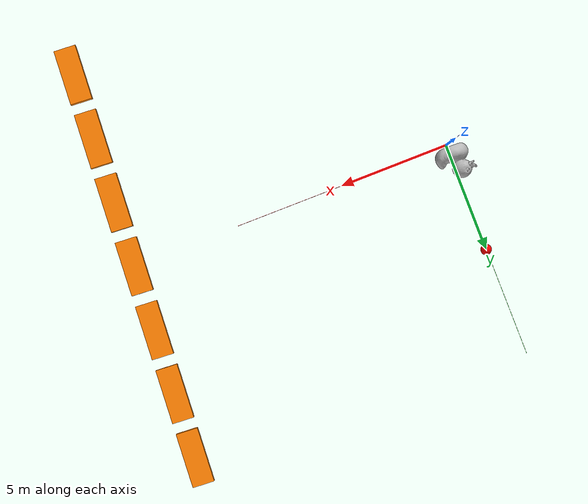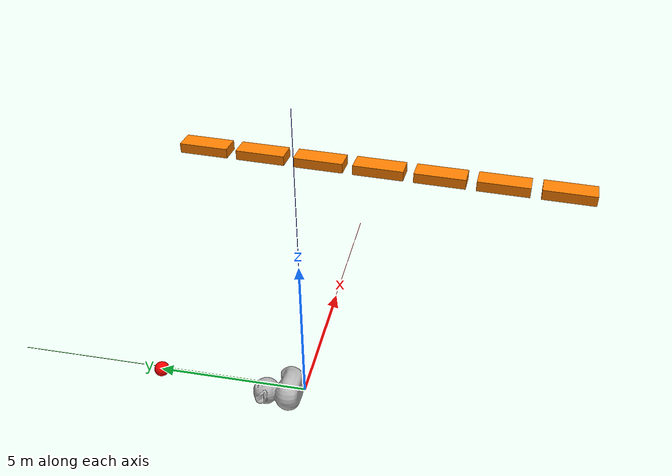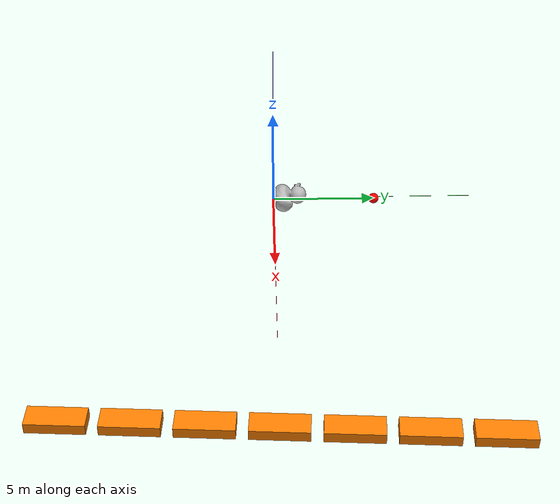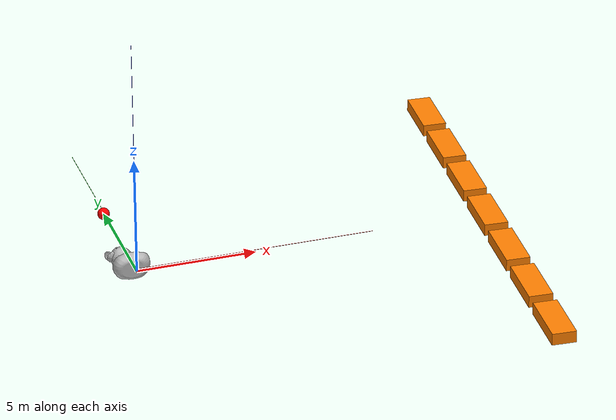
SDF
<sdf version="1.6">
 <world name="waves">
  <plugin filename="ignition-gazebo-physics-system" name="ignition::gazebo::systems::Physics"/>
  <plugin filename="ignition-gazebo-sensors-system" name="ignition::gazebo::systems::Sensors">
   <render_engine>ogre2</render_engine>
   <background_color>0.8 0.8 0.8</background_color>
  </plugin>
  <plugin filename="ignition-gazebo-scene-broadcaster-system" name="ignition::gazebo::systems::SceneBroadcaster"/>
  <plugin filename="ignition-gazebo-user-commands-system" name="ignition::gazebo::systems::UserCommands"/>
  <plugin filename="libignition-gazebo-imu-system.so" name="ignition::gazebo::systems::Imu"/>
  <scene><ambient>1.0 1.0 1.0</ambient><background>0.8 0.8 0.8</background></scene>
  <light type="directional" name="sun">
   <pose>0 0 10 0 0 0</pose>
   <diffuse>0.8 0.8 0.8 1</diffuse>
   <specular>0.6 0.6 0.6 1</specular>
   <direction>-0.5 0.1 -0.9</direction>
  </light>
  <include><uri>model://waves</uri></include>
  <model name="axes">
   <static>1</static>
   <link name="link">
    <visual name="r">
     <pose>5 0 0.1 0 0 0</pose>
     <geometry><box><size>10 0.01 0.01</size></box></geometry>
     <material>
      <ambient>1 0 0 1</ambient>
      <diffuse>1 0 0 1</diffuse>
      <emissive>1 0 0 1</emissive>
      <specular>0.5 0.5 0.5 1</specular>
     </material>
    </visual>
    <visual name="g">
     <pose>0 5 0.1 0 0 0</pose>
     <geometry><box><size>0.01 10 0.01</size></box></geometry>
     <material>
      <ambient>0 1 0 1</ambient>
      <diffuse>0 1 0 1</diffuse>
      <emissive>0 1 0 1</emissive>
      <specular>0.5 0.5 0.5 1</specular>
     </material>
    </visual>
    <visual name="b">
     <pose>0 0 5.1 0 0 0</pose>
     <geometry><box><size>0.01 0.01 10</size></box></geometry>
     <material>
      <ambient>0 0 1 1</ambient>
      <diffuse>0 0 1 1</diffuse>
      <emissive>0 0 1 1</emissive>
      <specular>0.5 0.5 0.5 1</specular>
     </material>
    </visual>
   </link>
  </model>
  <include><pose>0 0 0 0 0 3.14</pose><uri>model://duck</uri></include>
  <include><pose>0 5 0 0 0 0</pose><uri>model://spherical_buoy</uri></include>
  <include><pose>15 0 0 0 0 1.51</pose><uri>model://barrage</uri></include>
 </world>
</sdf>

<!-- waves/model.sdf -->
<sdf version="1.6">
  <model name="waves">
    <static>true</static>

    <plugin
        filename="ignition-marine1-waves-model-system"
        name="ignition::gazebo::systems::WavesModel">
        <static>0</static>
        <update_rate>30</update_rate>
        <wave>
          <!-- `fft` wave parameters -->
          <algorithm>fft</algorithm>
          <tile_size>512</tile_size>
          <cell_count>128</cell_count>
          <wind_speed>5.0</wind_speed>
          <wind_angle_deg>135</wind_angle_deg>
          <steepness>2</steepness>

        </wave>
    </plugin>

    <link name="base_link">
      <visual name="visual">
        <geometry>
          <sphere>
            <radius>0.01</radius>
          </sphere>
        </geometry>
        <material>
          <ambient>0.0 0.05 0.8 0.92</ambient>
          <diffuse>0.0 0.1 0.7 0.92</diffuse>
          <specular>0.7 0.7 0.7 0.92</specular>
          <pbr>
            <metal>
              <normal_map>materials/wave_normals.dds</normal_map>
              <environment_map>materials/skybox_lowres.dds</environment_map>
              <roughness>0.3</roughness>
              <metalness>0.1</metalness>
            </metal>
          </pbr>
        </material>

        <!-- \todo remove duplicate params; populate from service instead -->
        <plugin
            filename="ignition-marine1-waves-visual-system"
            name="ignition::gazebo::systems::WavesVisual">
            <static>0</static>
            <wave>
              <!-- `fft` wave parameters -->
              <algorithm>fft</algorithm>
              <tile_size>512</tile_size>
              <cell_count>128</cell_count>
              <wind_speed>5.0</wind_speed>
              <wind_angle_deg>135</wind_angle_deg>
              <steepness>2</steepness>

            </wave>
        </plugin>
      </visual>
    </link>
  </model>
</sdf>

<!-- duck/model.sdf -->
<sdf version='1.6'>
  <model name='duck'>
    <static>false</static>
    <plugin
        filename="gz-waves1-hydrodynamics-system"
        name="gz::sim::systems::Hydrodynamics">
    </plugin>
    <link name="base_link">
      <visual name="visual">
        <pose>0 0 0 1.5708 0 0</pose>
        <geometry>
          <mesh>
            <uri>model://duck/meshes/duck.dae</uri>
          </mesh>
        </geometry>
      </visual>
      <collision name="collision">
        <pose>0 0 0 0 0 0</pose>
        <geometry>
          <mesh>
            <uri>model://duck/meshes/duck_collision.stl</uri>
          </mesh>
        </geometry>
      </collision>
      <inertial>
        <pose>0 0 0 0 0 0</pose>
        <mass>400</mass>
        <inertia>
          <ixx>266</ixx>
          <ixy>0</ixy>
          <iyy>266</iyy>
          <iyz>0</iyz>
          <izz>266</izz>
        </inertia>
      </inertial>
    </link>
  </model>
</sdf>

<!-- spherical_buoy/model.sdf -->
<sdf version="1.6">
  <model name="spherical_buoy">
    <plugin
        filename="gz-marine1-hydrodynamics-system"
        name="gz::sim::systems::Hydrodynamics">
    </plugin>
    <link name="base_link">
      <visual name="visual">
        <geometry>
          <sphere>
            <radius>0.25</radius>
          </sphere>
        </geometry>
        <material>
          <ambient>1 0 0 1</ambient>
          <diffuse>1 0 0 1</diffuse>
          <specular>0.8 0.8 0.8 1</specular>
        </material>
      </visual>
      <collision name="collision">
        <geometry>
          <sphere>
            <radius>0.25</radius>
          </sphere>
        </geometry>
      </collision>
      <inertial>
        <mass>6.545</mass>
        <inertia>
          <ixx>0.1636</ixx>
          <ixy>0.0</ixy>
          <ixz>0.0</ixz>
          <iyy>0.1636</iyy>
          <iyz>0.0</iyz>
          <izz>0.1636</izz>
        </inertia>
      </inertial>
    </link>
  </model>
</sdf>

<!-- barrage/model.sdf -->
<sdf version="1.6">

  <model name="barrage">

    <include>
      <pose>0 0 0 0 0 0</pose>
      <uri>model://barrage_buoy</uri>
      <name>asv_barrage_buoy0</name>
    </include>

    <include>
      <pose>-3.0 0 0 0 0 0</pose>
      <uri>model://barrage_buoy</uri>
      <name>barrage_buoy-1</name>
    </include>

    <include>
      <pose>3.0 0 0 0 0 0</pose>
      <uri>model://barrage_buoy</uri>
      <name>barrage_buoy+1</name>
    </include>

    <include>
      <pose>-6.0 0 0 0 0 0</pose>
      <uri>model://barrage_buoy</uri>
      <name>barrage_buoy-2</name>
    </include>

    <include>
      <pose>6.0 0 0 0 0 0</pose>
      <uri>model://barrage_buoy</uri>
      <name>barrage_buoy+2</name>
    </include>

    <include>
      <pose>-9.0 0 0 0 0 0</pose>
      <uri>model://barrage_buoy</uri>
      <name>barrage_buoy-3</name>
    </include>

    <include>
      <pose>9.0 0 0 0 0 0</pose>
      <uri>model://barrage_buoy</uri>
      <name>barrage_buoy+3</name>
    </include>

    <joint type="universal" name="barrage_buoy_0_-1_joint">
      <pose>1.5 0 0 0 0 0</pose>
      <child>barrage_buoy-1::base_link</child>
      <parent>asv_barrage_buoy0::base_link</parent>
      <axis>
        <xyz>0 1 0</xyz>
        <limit>
          <lower>-0.78539</lower>
          <upper>0.78539</upper>
        </limit>
      </axis>
      <axis2>
        <xyz>0 0 1</xyz>
        <limit>
          <lower>-0.78539</lower>
          <upper>0.78539</upper>
        </limit>
      </axis2>
    </joint>

    <joint type="universal" name="barrage_buoy_0_+1_joint">
      <pose>-1.5 0 0 0 0 0</pose>
      <child>barrage_buoy+1::base_link</child>
      <parent>asv_barrage_buoy0::base_link</parent>
      <axis>
        <xyz>0 1 0</xyz>
        <limit>
          <lower>-0.78539</lower>
          <upper>0.78539</upper>
        </limit>
      </axis>
      <axis2>
        <xyz>0 0 1</xyz>
        <limit>
          <lower>-0.78539</lower>
          <upper>0.78539</upper>
        </limit>
      </axis2>
    </joint>

    <joint type="universal" name="barrage_buoy_-1_-2_joint">
      <pose>1.5 0 0 0 0 0</pose>
      <child>barrage_buoy-2::base_link</child>
      <parent>barrage_buoy-1::base_link</parent>
      <axis>
        <xyz>0 1 0</xyz>
        <limit>
          <lower>-0.78539</lower>
          <upper>0.78539</upper>
        </limit>
      </axis>
      <axis2>
        <xyz>0 0 1</xyz>
        <limit>
          <lower>-0.78539</lower>
          <upper>0.78539</upper>
        </limit>
      </axis2>
    </joint>

    <joint type="universal" name="barrage_buoy_+1_+2_joint">
      <pose>-1.5 0 0 0 0 0</pose>
      <child>barrage_buoy+2::base_link</child>
      <parent>barrage_buoy+1::base_link</parent>
      <axis>
        <xyz>0 1 0</xyz>
        <limit>
          <lower>-0.78539</lower>
          <upper>0.78539</upper>
        </limit>
      </axis>
      <axis2>
        <xyz>0 0 1</xyz>
        <limit>
          <lower>-0.78539</lower>
          <upper>0.78539</upper>
        </limit>
      </axis2>
    </joint>

    <joint type="universal" name="barrage_buoy_-2_-3_joint">
      <pose>1.5 0 0 0 0 0</pose>
      <child>barrage_buoy-3::base_link</child>
      <parent>barrage_buoy-2::base_link</parent>
      <axis>
        <xyz>0 1 0</xyz>
        <limit>
          <lower>-0.78539</lower>
          <upper>0.78539</upper>
        </limit>
      </axis>
      <axis2>
        <xyz>0 0 1</xyz>
        <limit>
          <lower>-0.78539</lower>
          <upper>0.78539</upper>
        </limit>
      </axis2>
    </joint>

    <joint type="universal" name="barrage_buoy_+2_+3_joint">
      <pose>-1.5 0 0 0 0 0</pose>
      <child>barrage_buoy+3::base_link</child>
      <parent>barrage_buoy+2::base_link</parent>
      <axis>
        <xyz>0 1 0</xyz>
        <limit>
          <lower>-0.78539</lower>
          <upper>0.78539</upper>
        </limit>
      </axis>
      <axis2>
        <xyz>0 0 1</xyz>
        <limit>
          <lower>-0.78539</lower>
          <upper>0.78539</upper>
        </limit>
      </axis2>
    </joint>

  </model>
</sdf>

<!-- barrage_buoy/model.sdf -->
<sdf version="1.6">
  <model name="barrage_buoy">
    <plugin
        filename="gz-waves1-hydrodynamics-system"
        name="gz::sim::systems::Hydrodynamics">
    </plugin>
    <link name="base_link">
      <visual name="visual">
        <geometry>
          <box>
            <size>2.5 1 0.5</size>
          </box>
        </geometry>
        <material>
          <ambient>1.0 0.5 0.0 1.0</ambient>
          <diffuse>1.0 0.5 0.0 1.0</diffuse>
          <specular>0.8 0.8 0.8 1.0</specular>
        </material>
      </visual>
      <collision name="collision">
        <geometry>
          <box>
            <size>2.5 1 0.5</size>
          </box>
        </geometry>
      </collision>
      <inertial>
        <mass>312.5</mass>
        <inertia>
          <ixx>32.5</ixx>
          <ixy>0.0</ixy>
          <ixz>0.0</ixz>
          <iyy>169.3</iyy>
          <iyz>0.0</iyz>
          <izz>188.8</izz>
        </inertia>
      </inertial>
    </link>
  </model>
</sdf>
